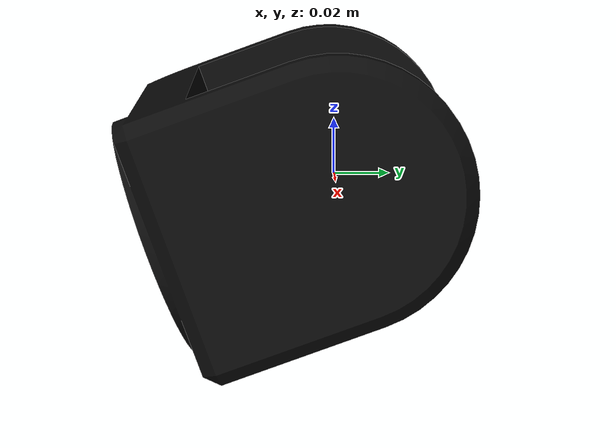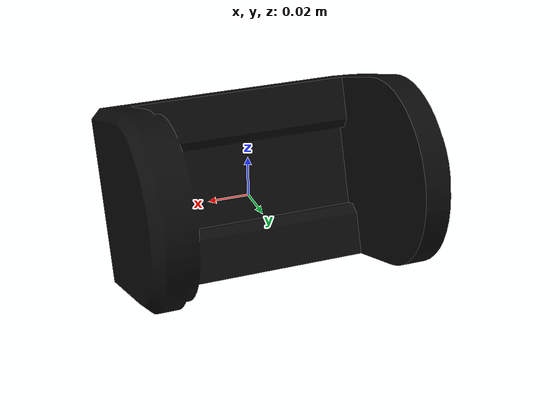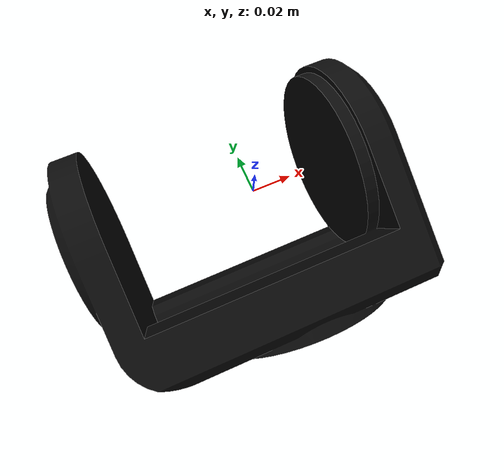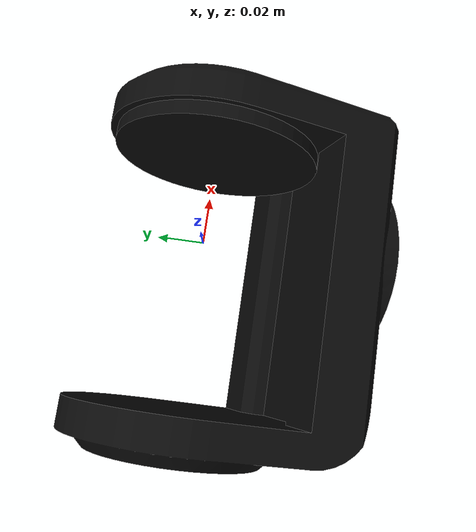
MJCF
<mujoco model="LINK_14">
  <default>
    <default class="visual">
      <geom group="2" type="mesh" contype="0" conaffinity="0"/>
    </default>
    <default class="collision">
      <geom group="3" type="mesh"/>
    </default>
  </default>
  <asset>
    <material name="10,10,10" specular="0.039216" shininess="1.0" rgba="0.039216 0.039216 0.039216 1.000000"/>
    <mesh file="LINK_14.obj"/>
    <mesh file="LINK_14_collision_0.obj"/>
    <mesh file="LINK_14_collision_1.obj"/>
    <mesh file="LINK_14_collision_2.obj"/>
    <mesh file="LINK_14_collision_3.obj"/>
    <mesh file="LINK_14_collision_4.obj"/>
    <mesh file="LINK_14_collision_5.obj"/>
    <mesh file="LINK_14_collision_6.obj"/>
    <mesh file="LINK_14_collision_7.obj"/>
    <mesh file="LINK_14_collision_8.obj"/>
    <mesh file="LINK_14_collision_9.obj"/>
    <mesh file="LINK_14_collision_10.obj"/>
    <mesh file="LINK_14_collision_11.obj"/>
    <mesh file="LINK_14_collision_12.obj"/>
    <mesh file="LINK_14_collision_13.obj"/>
    <mesh file="LINK_14_collision_14.obj"/>
    <mesh file="LINK_14_collision_15.obj"/>
    <mesh file="LINK_14_collision_16.obj"/>
    <mesh file="LINK_14_collision_17.obj"/>
  </asset>
  <worldbody>
    <body name="LINK_14">
      <geom material="10,10,10" mesh="LINK_14" class="visual"/>
      <geom mesh="LINK_14_collision_0" rgba="0.6588961072792826 0.22772338666699987 0.35101186014361885 1" class="collision"/>
      <geom mesh="LINK_14_collision_1" rgba="0.7033238262826839 0.6430421894737188 0.9083715342222004 1" class="collision"/>
      <geom mesh="LINK_14_collision_2" rgba="0.33100794568837455 0.39118904547870104 0.09286075458846255 1" class="collision"/>
      <geom mesh="LINK_14_collision_3" rgba="0.7891669477322876 0.9891161812085455 0.6965970493622313 1" class="collision"/>
      <geom mesh="LINK_14_collision_4" rgba="0.7636015968188081 0.2544818264391896 0.7536558833256755 1" class="collision"/>
      <geom mesh="LINK_14_collision_5" rgba="0.00896134679676952 0.9410499963995486 0.18538977822703206 1" class="collision"/>
      <geom mesh="LINK_14_collision_6" rgba="0.9437483036056155 0.5943917926154658 0.1175127103573278 1" class="collision"/>
      <geom mesh="LINK_14_collision_7" rgba="0.9865188475839277 0.6566329976473484 0.44527914157841875 1" class="collision"/>
      <geom mesh="LINK_14_collision_8" rgba="0.565522804563683 0.8144632960408111 0.9963805286273992 1" class="collision"/>
      <geom mesh="LINK_14_collision_9" rgba="0.387185341242651 0.6114655306382939 0.17119364003036086 1" class="collision"/>
      <geom mesh="LINK_14_collision_10" rgba="0.19581337049680736 0.8654241834331186 0.6485358550208605 1" class="collision"/>
      <geom mesh="LINK_14_collision_11" rgba="0.4069618155184923 0.2530790474663528 0.10940123762485043 1" class="collision"/>
      <geom mesh="LINK_14_collision_12" rgba="0.6006062479770397 0.8328309791950896 0.06444172261135805 1" class="collision"/>
      <geom mesh="LINK_14_collision_13" rgba="0.3066063981698638 0.37753414095108384 0.9658045783645351 1" class="collision"/>
      <geom mesh="LINK_14_collision_14" rgba="0.7229734024683137 0.16757701026531713 0.05160089730113426 1" class="collision"/>
      <geom mesh="LINK_14_collision_15" rgba="0.018608912259078236 0.7143729409493725 0.26988619570163785 1" class="collision"/>
      <geom mesh="LINK_14_collision_16" rgba="0.47253661038962624 0.3779853566140836 0.18632321190761136 1" class="collision"/>
      <geom mesh="LINK_14_collision_17" rgba="0.21838824731292372 0.47145505338870997 0.06997508657124074 1" class="collision"/>
    </body>
  </worldbody>
</mujoco>
